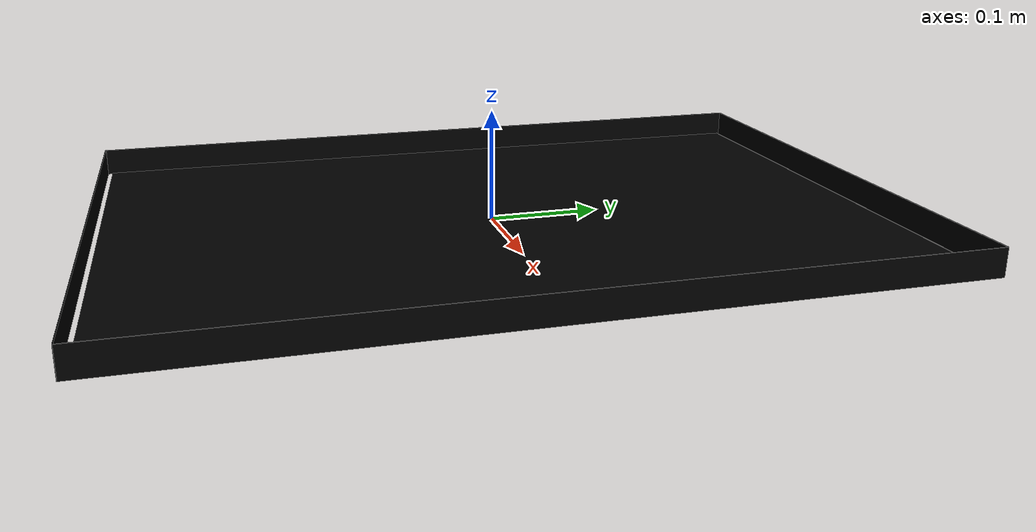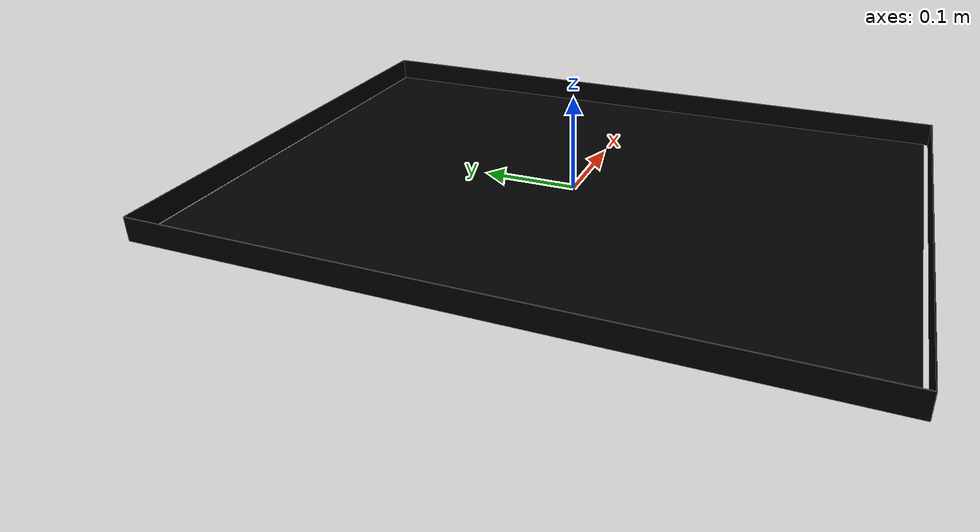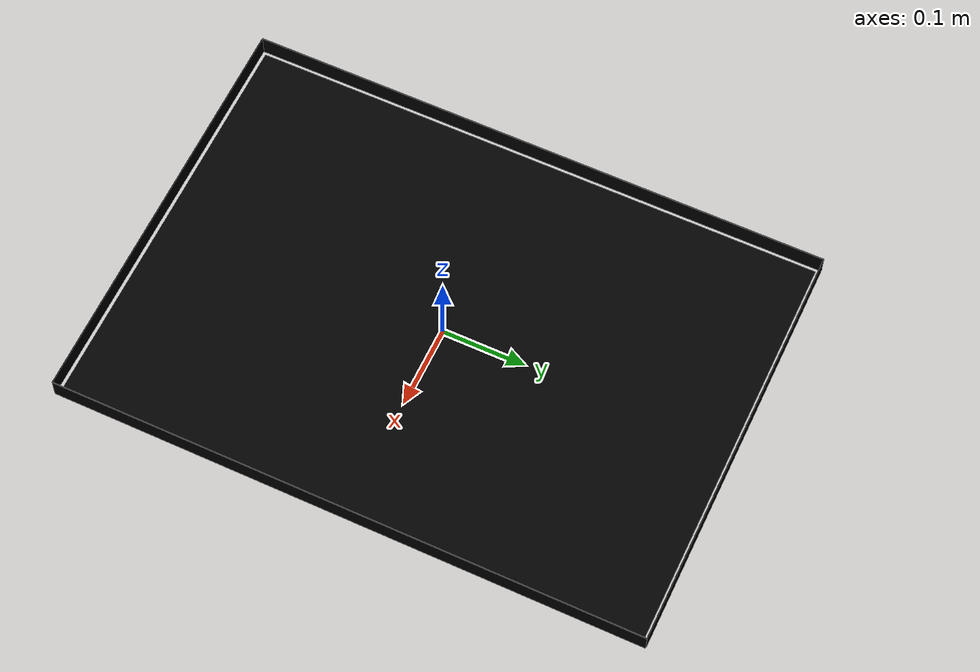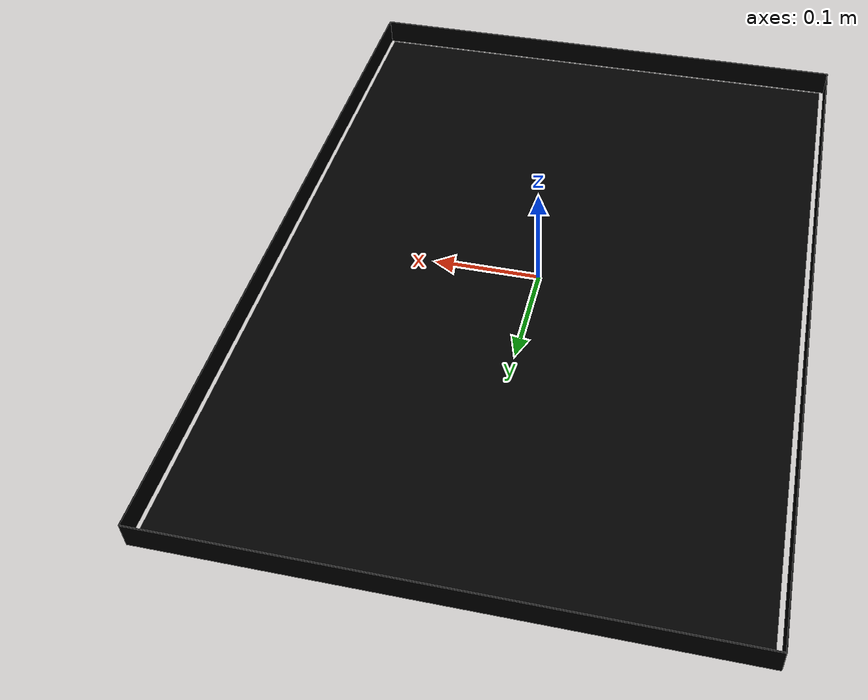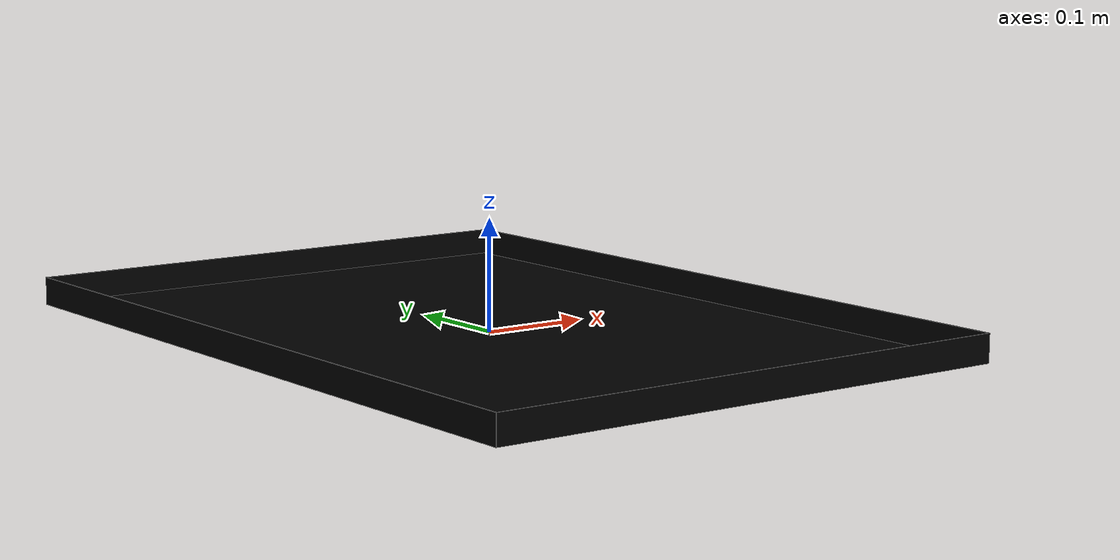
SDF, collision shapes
<?xml version='1.0'?>
<sdf version='1.6'>
  <model name='open_box1'>
    <link name='box_base'>
      <gravity>1</gravity>
      <inertial>
        <mass>1</mass>
        <inertia>
          <ixx>0.0408</ixx>
          <ixy>0</ixy>
          <ixz>0</ixz>
          <iyy>0.02084</iyy>
          <iyz>0</iyz>
          <izz>0.0616</izz>
        </inertia>
        <pose frame=''>0 0 0 0 -0 0</pose>
      </inertial>
      <sensor name='shipping_box_contact' type='contact'>
        <update_rate>1</update_rate>
        <contact>
          <collision>box_base</collision>
          <topic>__default_topic__</topic>
        </contact>
      </sensor>
      <self_collide>0</self_collide>
      <enable_wind>0</enable_wind>
      <kinematic>0</kinematic>
      <pose frame=''>0 0 0 0 -0 0</pose>
      <visual name='open_box'>
        <geometry>
          <mesh>
            <scale>1.1 1.8 0.5</scale>
            <uri>model://open_box_ariac/meshes/open_box.obj</uri>
          </mesh>
        </geometry>
        <plugin name='toggle' filename='libToggleVisualPlugin.so'>
          <initially_visible>1</initially_visible>
          <topic>~/shipping_box_visual_toggle</topic>
        </plugin>
        <material>
          <shader type='pixel'>
            <normal_map>__default__</normal_map>
          </shader>
          <script>
            <name>ModelPreview_19::box_base::open_box_MATERIAL_</name>
          </script>
          <ambient>0 0 0 1</ambient>
          <diffuse>0 0 0 1</diffuse>
          <specular>0 0 0 1</specular>
          <emissive>0 0 0 1</emissive>
        </material>
        <pose frame=''>0 0 0 0 -0 0</pose>
        <transparency>0</transparency>
        <cast_shadows>1</cast_shadows>
      </visual>
      <visual name='closed_box'>
        <geometry>
          <mesh>
            <scale>1.1 1.8 0.25</scale>
            <uri>model://closed_box_ariac/meshes/closed_box.obj</uri>
          </mesh>
        </geometry>
        <plugin name='toggle' filename='libToggleVisualPlugin.so'>
          <initially_visible>0</initially_visible>
          <topic>~/shipping_box_visual_toggle</topic>
        </plugin>
        <material>
          <shader type='pixel'>
            <normal_map>__default__</normal_map>
          </shader>
          <script>
            <name>ModelPreview_19::box_base::closed_box_MATERIAL_</name>
          </script>
          <ambient>0 0 0 1</ambient>
          <diffuse>0 0 0 1</diffuse>
          <specular>0 0 0 1</specular>
          <emissive>0 0 0 1</emissive>
        </material>
        <pose frame=''>0 0 0 0 -0 0</pose>
        <transparency>0</transparency>
        <cast_shadows>1</cast_shadows>
      </visual>
      <collision name='box_base'>
        <laser_retro>0</laser_retro>
        <max_contacts>10</max_contacts>
        <pose frame=''>0 0 0.0015 0 -0 0</pose>
        <geometry>
          <box>
            <size>0.49 0.69 0.001</size>
          </box>
        </geometry>
        <surface>
          <friction>
            <ode>
              <mu>1</mu>
              <mu2>1</mu2>
              <fdir1>0 0 0</fdir1>
              <slip1>0</slip1>
              <slip2>0</slip2>
            </ode>
            <torsional>
              <coefficient>1</coefficient>
              <patch_radius>0</patch_radius>
              <surface_radius>0</surface_radius>
              <use_patch_radius>1</use_patch_radius>
              <ode>
                <slip>0</slip>
              </ode>
            </torsional>
          </friction>
          <bounce>
            <restitution_coefficient>0</restitution_coefficient>
            <threshold>1e+06</threshold>
          </bounce>
          <contact>
            <collide_without_contact>0</collide_without_contact>
            <collide_without_contact_bitmask>1</collide_without_contact_bitmask>
            <collide_bitmask>1</collide_bitmask>
            <ode>
              <soft_cfm>0</soft_cfm>
              <soft_erp>0.2</soft_erp>
              <kp>1e+13</kp>
              <kd>1</kd>
              <max_vel>0</max_vel>
              <min_depth>0.001</min_depth>
            </ode>
            <bullet>
              <split_impulse>1</split_impulse>
              <split_impulse_penetration_threshold>-0.01</split_impulse_penetration_threshold>
              <soft_cfm>0</soft_cfm>
              <soft_erp>0.2</soft_erp>
              <kp>1e+13</kp>
              <kd>1</kd>
            </bullet>
          </contact>
        </surface>
      </collision>
      <collision name='box_bottom'>
        <laser_retro>0</laser_retro>
        <max_contacts>10</max_contacts>
        <pose frame=''>0 0 0.0005 0 -0 0</pose>
        <geometry>
          <box>
            <size>0.49 0.69 0.001</size>
          </box>
        </geometry>
        <surface>
          <friction>
            <ode>
              <mu>1</mu>
              <mu2>1</mu2>
              <fdir1>0 0 0</fdir1>
              <slip1>0</slip1>
              <slip2>0</slip2>
            </ode>
            <torsional>
              <coefficient>1</coefficient>
              <patch_radius>0</patch_radius>
              <surface_radius>0</surface_radius>
              <use_patch_radius>1</use_patch_radius>
              <ode>
                <slip>0</slip>
              </ode>
            </torsional>
          </friction>
          <bounce>
            <restitution_coefficient>0</restitution_coefficient>
            <threshold>1e+06</threshold>
          </bounce>
          <contact>
            <collide_without_contact>0</collide_without_contact>
            <collide_without_contact_bitmask>1</collide_without_contact_bitmask>
            <collide_bitmask>1</collide_bitmask>
            <ode>
              <soft_cfm>0</soft_cfm>
              <soft_erp>0.2</soft_erp>
              <kp>1e+13</kp>
              <kd>1</kd>
              <max_vel>0</max_vel>
              <min_depth>0.001</min_depth>
            </ode>
            <bullet>
              <split_impulse>1</split_impulse>
              <split_impulse_penetration_threshold>-0.01</split_impulse_penetration_threshold>
              <soft_cfm>0</soft_cfm>
              <soft_erp>0.2</soft_erp>
              <kp>1e+13</kp>
              <kd>1</kd>
            </bullet>
          </contact>
        </surface>
      </collision>
      <collision name='tray_collision1'>
        <laser_retro>0</laser_retro>
        <max_contacts>10</max_contacts>
        <pose frame=''>0.25 0 0.0127 0 -0 0</pose>
        <geometry>
          <box>
            <size>0.001 0.7 0.0254</size>
          </box>
        </geometry>
        <surface>
          <friction>
            <ode>
              <mu>1</mu>
              <mu2>1</mu2>
              <fdir1>0 0 0</fdir1>
              <slip1>0</slip1>
              <slip2>0</slip2>
            </ode>
            <torsional>
              <coefficient>1</coefficient>
              <patch_radius>0</patch_radius>
              <surface_radius>0</surface_radius>
              <use_patch_radius>1</use_patch_radius>
              <ode>
                <slip>0</slip>
              </ode>
            </torsional>
          </friction>
          <bounce>
            <restitution_coefficient>0</restitution_coefficient>
            <threshold>1e+06</threshold>
          </bounce>
          <contact>
            <collide_without_contact>0</collide_without_contact>
            <collide_without_contact_bitmask>1</collide_without_contact_bitmask>
            <collide_bitmask>1</collide_bitmask>
            <ode>
              <soft_cfm>0</soft_cfm>
              <soft_erp>0.2</soft_erp>
              <kp>1e+13</kp>
              <kd>1</kd>
              <max_vel>0</max_vel>
              <min_depth>0.001</min_depth>
            </ode>
            <bullet>
              <split_impulse>1</split_impulse>
              <split_impulse_penetration_threshold>-0.01</split_impulse_penetration_threshold>
              <soft_cfm>0</soft_cfm>
              <soft_erp>0.2</soft_erp>
              <kp>1e+13</kp>
              <kd>1</kd>
            </bullet>
          </contact>
        </surface>
      </collision>
      <collision name='tray_collision2'>
        <laser_retro>0</laser_retro>
        <max_contacts>10</max_contacts>
        <pose frame=''>-0.25 0 0.0127 0 -0 0</pose>
        <geometry>
          <box>
            <size>0.001 0.7 0.0254</size>
          </box>
        </geometry>
        <surface>
          <friction>
            <ode>
              <mu>1</mu>
              <mu2>1</mu2>
              <fdir1>0 0 0</fdir1>
              <slip1>0</slip1>
              <slip2>0</slip2>
            </ode>
            <torsional>
              <coefficient>1</coefficient>
              <patch_radius>0</patch_radius>
              <surface_radius>0</surface_radius>
              <use_patch_radius>1</use_patch_radius>
              <ode>
                <slip>0</slip>
              </ode>
            </torsional>
          </friction>
          <bounce>
            <restitution_coefficient>0</restitution_coefficient>
            <threshold>1e+06</threshold>
          </bounce>
          <contact>
            <collide_without_contact>0</collide_without_contact>
            <collide_without_contact_bitmask>1</collide_without_contact_bitmask>
            <collide_bitmask>1</collide_bitmask>
            <ode>
              <soft_cfm>0</soft_cfm>
              <soft_erp>0.2</soft_erp>
              <kp>1e+13</kp>
              <kd>1</kd>
              <max_vel>0</max_vel>
              <min_depth>0.001</min_depth>
            </ode>
            <bullet>
              <split_impulse>1</split_impulse>
              <split_impulse_penetration_threshold>-0.01</split_impulse_penetration_threshold>
              <soft_cfm>0</soft_cfm>
              <soft_erp>0.2</soft_erp>
              <kp>1e+13</kp>
              <kd>1</kd>
            </bullet>
          </contact>
        </surface>
      </collision>
      <collision name='tray_collision3'>
        <laser_retro>0</laser_retro>
        <max_contacts>10</max_contacts>
        <pose frame=''>0 0.35 0.0127 0 -0 0</pose>
        <geometry>
          <box>
            <size>0.5 0.001 0.0254</size>
          </box>
        </geometry>
        <surface>
          <friction>
            <ode>
              <mu>1</mu>
              <mu2>1</mu2>
              <fdir1>0 0 0</fdir1>
              <slip1>0</slip1>
              <slip2>0</slip2>
            </ode>
            <torsional>
              <coefficient>1</coefficient>
              <patch_radius>0</patch_radius>
              <surface_radius>0</surface_radius>
              <use_patch_radius>1</use_patch_radius>
              <ode>
                <slip>0</slip>
              </ode>
            </torsional>
          </friction>
          <bounce>
            <restitution_coefficient>0</restitution_coefficient>
            <threshold>1e+06</threshold>
          </bounce>
          <contact>
            <collide_without_contact>0</collide_without_contact>
            <collide_without_contact_bitmask>1</collide_without_contact_bitmask>
            <collide_bitmask>1</collide_bitmask>
            <ode>
              <soft_cfm>0</soft_cfm>
              <soft_erp>0.2</soft_erp>
              <kp>1e+13</kp>
              <kd>1</kd>
              <max_vel>0</max_vel>
              <min_depth>0.001</min_depth>
            </ode>
            <bullet>
              <split_impulse>1</split_impulse>
              <split_impulse_penetration_threshold>-0.01</split_impulse_penetration_threshold>
              <soft_cfm>0</soft_cfm>
              <soft_erp>0.2</soft_erp>
              <kp>1e+13</kp>
              <kd>1</kd>
            </bullet>
          </contact>
        </surface>
      </collision>
      <collision name='tray_collision4'>
        <laser_retro>0</laser_retro>
        <max_contacts>10</max_contacts>
        <pose frame=''>0 -0.35 0.0127 0 -0 0</pose>
        <geometry>
          <box>
            <size>0.5 0.001 0.0254</size>
          </box>
        </geometry>
        <surface>
          <friction>
            <ode>
              <mu>1</mu>
              <mu2>1</mu2>
              <fdir1>0 0 0</fdir1>
              <slip1>0</slip1>
              <slip2>0</slip2>
            </ode>
            <torsional>
              <coefficient>1</coefficient>
              <patch_radius>0</patch_radius>
              <surface_radius>0</surface_radius>
              <use_patch_radius>1</use_patch_radius>
              <ode>
                <slip>0</slip>
              </ode>
            </torsional>
          </friction>
          <bounce>
            <restitution_coefficient>0</restitution_coefficient>
            <threshold>1e+06</threshold>
          </bounce>
          <contact>
            <collide_without_contact>0</collide_without_contact>
            <collide_without_contact_bitmask>1</collide_without_contact_bitmask>
            <collide_bitmask>1</collide_bitmask>
            <ode>
              <soft_cfm>0</soft_cfm>
              <soft_erp>0.2</soft_erp>
              <kp>1e+13</kp>
              <kd>1</kd>
              <max_vel>0</max_vel>
              <min_depth>0.001</min_depth>
            </ode>
            <bullet>
              <split_impulse>1</split_impulse>
              <split_impulse_penetration_threshold>-0.01</split_impulse_penetration_threshold>
              <soft_cfm>0</soft_cfm>
              <soft_erp>0.2</soft_erp>
              <kp>1e+13</kp>
              <kd>1</kd>
            </bullet>
          </contact>
        </surface>
      </collision>
    </link>
    <static>0</static>
    <allow_auto_disable>1</allow_auto_disable>
  </model>
</sdf>
